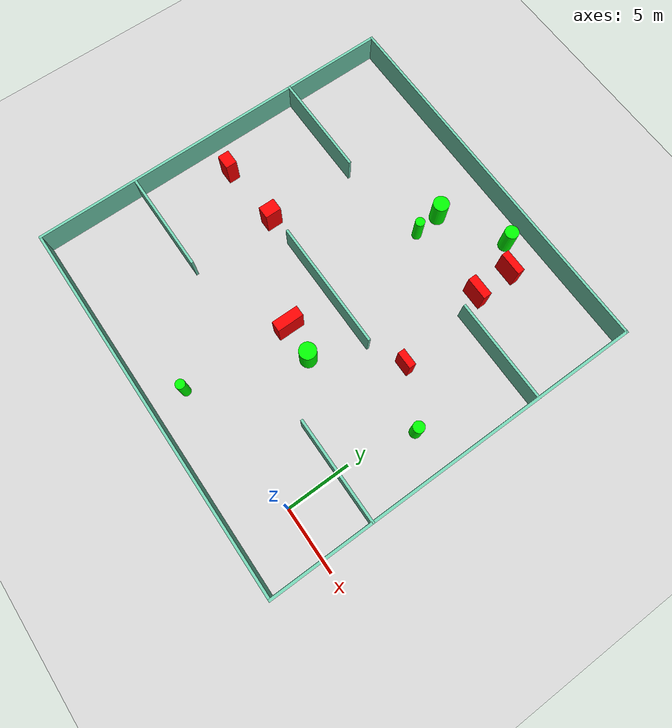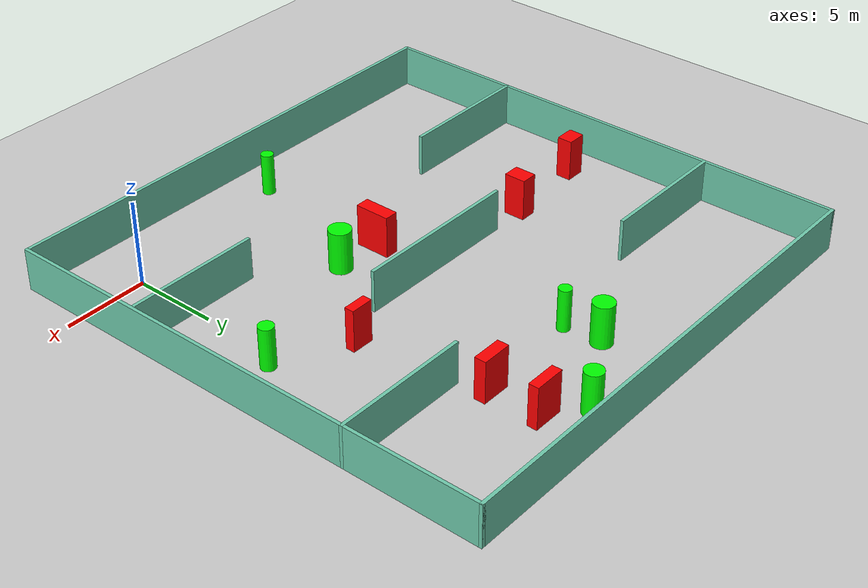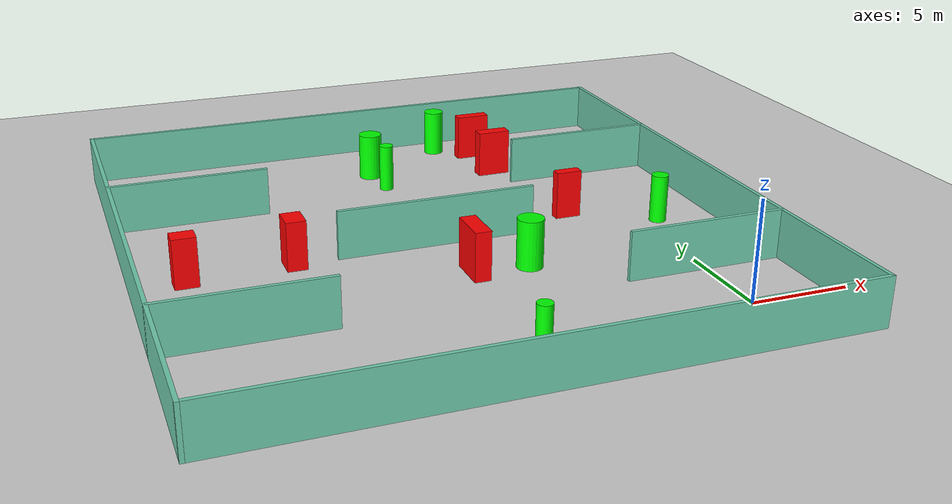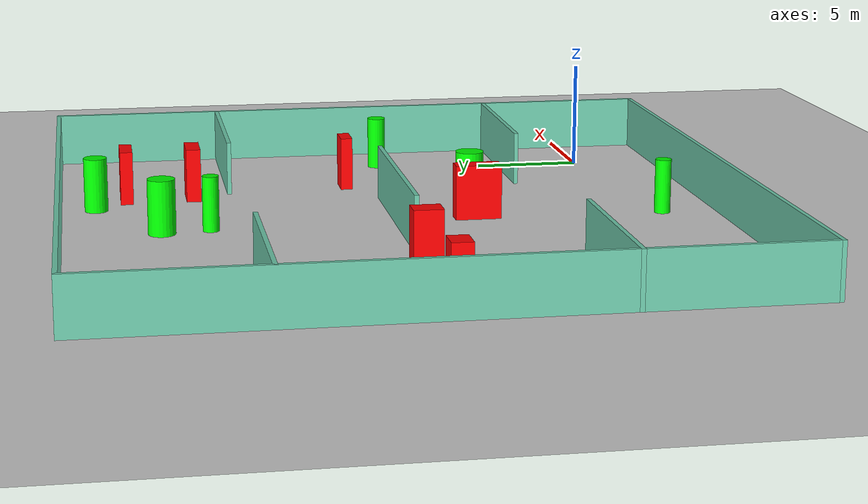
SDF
<sdf version="1.7">
 <world name="default">
  <light name="sun" type="directional">
   <pose>0 0 10 0 -0 0</pose>
   <diffuse>0.8 0.8 0.8 1</diffuse>
   <specular>0.2 0.2 0.2 1</specular>
   <attenuation>
    <range>1000</range>
    <constant>0.9</constant>
    <linear>0.01</linear>
    <quadratic>0.001</quadratic>
   </attenuation>
   <direction>-0.5 0.1 -0.9</direction>
   <spot><inner_angle>0</inner_angle><outer_angle>0</outer_angle><falloff>0</falloff></spot>
  </light>
  <model name="ground_plane">
   <static>1</static>
   <link name="link">
    <collision name="collision">
     <geometry><plane><normal>0 0 1</normal><size>100 100</size></plane></geometry>
     <surface>
      <contact><collide_bitmask>65535</collide_bitmask></contact>
      <friction><ode><mu>100</mu><mu2>50</mu2></ode></friction>
     </surface>
    </collision>
    <visual name="visual">
     <cast_shadows>0</cast_shadows>
     <geometry><plane><normal>0 0 1</normal><size>100 100</size></plane></geometry>
     <material>
      <script><uri>file://media/materials/scripts/gazebo.material</uri><name>Gazebo/Grey</name></script>
     </material>
    </visual>
   </link>
  </model>
  <gravity>0 0 -9.8</gravity>
  <magnetic_field>6e-06 2.3e-05 -4.2e-05</magnetic_field>
  <atmosphere type="adiabatic"/>
  <physics type="ode">
   <max_step_size>0.001</max_step_size>
   <real_time_factor>1</real_time_factor>
   <real_time_update_rate>1000</real_time_update_rate>
  </physics>
  <scene><ambient>0.4 0.4 0.4 1</ambient><background>0.7 0.7 0.7 1</background><shadows>1</shadows></scene>
  <spherical_coordinates>
   <surface_model>EARTH_WGS84</surface_model>
   <latitude_deg>0</latitude_deg>
   <longitude_deg>0</longitude_deg>
   <elevation>0</elevation>
   <heading_deg>0</heading_deg>
  </spherical_coordinates>
  <model name="my_base_walls">
   <link name="Wall_10">
    <collision name="Wall_10_Collision">
     <geometry><box><size>8.2 0.2 2.5</size></box></geometry>
     <pose>0 0 1.25 0 -0 0</pose>
    </collision>
    <visual name="Wall_10_Visual">
     <pose>0 0 1.25 0 -0 0</pose>
     <geometry><box><size>8.2 0.2 2.5</size></box></geometry>
     <material>
      <script><uri>file://media/materials/scripts/gazebo.material</uri><name>Gazebo/Grey</name></script>
      <ambient>0.435294 0.796078 0.67451 1</ambient>
     </material>
     <meta><layer>0</layer></meta>
    </visual>
    <pose>-11 -7 0 0 -0 0</pose>
   </link>
   <link name="Wall_12">
    <collision name="Wall_12_Collision">
     <geometry><box><size>8.2 0.2 2.5</size></box></geometry>
     <pose>0 0 1.25 0 -0 0</pose>
    </collision>
    <visual name="Wall_12_Visual">
     <pose>0 0 1.25 0 -0 0</pose>
     <geometry><box><size>8.2 0.2 2.5</size></box></geometry>
     <material>
      <script><uri>file://media/materials/scripts/gazebo.material</uri><name>Gazebo/Grey</name></script>
      <ambient>0.435294 0.796078 0.67451 1</ambient>
     </material>
     <meta><layer>0</layer></meta>
    </visual>
    <pose>-11 7 0 0 -0 0</pose>
   </link>
   <link name="Wall_14">
    <collision name="Wall_14_Collision">
     <geometry><box><size>8.2 0.2 2.5</size></box></geometry>
     <pose>0 0 1.25 0 -0 0</pose>
    </collision>
    <visual name="Wall_14_Visual">
     <pose>0 0 1.25 0 -0 0</pose>
     <geometry><box><size>8.2 0.2 2.5</size></box></geometry>
     <material>
      <script><uri>file://media/materials/scripts/gazebo.material</uri><name>Gazebo/Grey</name></script>
      <ambient>0.435294 0.796078 0.67451 1</ambient>
     </material>
     <meta><layer>0</layer></meta>
    </visual>
    <pose>11 7 0 0 -0 3.14159</pose>
   </link>
   <link name="Wall_16">
    <collision name="Wall_16_Collision">
     <geometry><box><size>10.2 0.2 2.5</size></box></geometry>
     <pose>0 0 1.25 0 -0 0</pose>
    </collision>
    <visual name="Wall_16_Visual">
     <pose>0 0 1.25 0 -0 0</pose>
     <geometry><box><size>10.2 0.2 2.5</size></box></geometry>
     <material>
      <script><uri>file://media/materials/scripts/gazebo.material</uri><name>Gazebo/Grey</name></script>
      <ambient>0.435294 0.796078 0.67451 1</ambient>
     </material>
     <meta><layer>0</layer></meta>
    </visual>
    <pose>0 0 0 0 -0 3.14159</pose>
   </link>
   <link name="Wall_2">
    <collision name="Wall_2_Collision">
     <geometry><box><size>30.2 0.2 2.5</size></box></geometry>
     <pose>0 0 1.25 0 -0 0</pose>
    </collision>
    <visual name="Wall_2_Visual">
     <pose>0 0 1.25 0 -0 0</pose>
     <geometry><box><size>30.2 0.2 2.5</size></box></geometry>
     <material>
      <script><uri>file://media/materials/scripts/gazebo.material</uri><name>Gazebo/Grey</name></script>
      <ambient>0.435294 0.796078 0.67451 1</ambient>
     </material>
     <meta><layer>0</layer></meta>
    </visual>
    <pose>0 -15 0 0 -0 3.14159</pose>
   </link>
   <link name="Wall_3">
    <collision name="Wall_3_Collision">
     <geometry><box><size>30.2 0.2 2.5</size></box></geometry>
     <pose>0 0 1.25 0 -0 0</pose>
    </collision>
    <visual name="Wall_3_Visual">
     <pose>0 0 1.25 0 -0 0</pose>
     <geometry><box><size>30.2 0.2 2.5</size></box></geometry>
     <material>
      <script><uri>file://media/materials/scripts/gazebo.material</uri><name>Gazebo/Grey</name></script>
      <ambient>0.435294 0.796078 0.67451 1</ambient>
     </material>
     <meta><layer>0</layer></meta>
    </visual>
    <pose>-15 0 0 0 -0 1.5708</pose>
   </link>
   <link name="Wall_4">
    <collision name="Wall_4_Collision">
     <geometry><box><size>30.2 0.2 2.5</size></box></geometry>
     <pose>0 0 1.25 0 -0 0</pose>
    </collision>
    <visual name="Wall_4_Visual">
     <pose>0 0 1.25 0 -0 0</pose>
     <geometry><box><size>30.2 0.2 2.5</size></box></geometry>
     <material>
      <script><uri>file://media/materials/scripts/gazebo.material</uri><name>Gazebo/Grey</name></script>
      <ambient>0.435294 0.796078 0.67451 1</ambient>
     </material>
     <meta><layer>0</layer></meta>
    </visual>
    <pose>0 15 0 0 -0 0</pose>
   </link>
   <link name="Wall_6">
    <collision name="Wall_6_Collision">
     <geometry><box><size>30.2 0.2 2.5</size></box></geometry>
     <pose>0 0 1.25 0 -0 0</pose>
    </collision>
    <visual name="Wall_6_Visual">
     <pose>0 0 1.25 0 -0 0</pose>
     <geometry><box><size>30.2 0.2 2.5</size></box></geometry>
     <material>
      <script><uri>file://media/materials/scripts/gazebo.material</uri><name>Gazebo/Grey</name></script>
      <ambient>0.435294 0.796078 0.67451 1</ambient>
     </material>
     <meta><layer>0</layer></meta>
    </visual>
    <pose>15 0 0 0 -0 1.5708</pose>
   </link>
   <link name="Wall_8">
    <collision name="Wall_8_Collision">
     <geometry><box><size>8.2 0.2 2.5</size></box></geometry>
     <pose>0 0 1.25 0 -0 0</pose>
    </collision>
    <visual name="Wall_8_Visual">
     <pose>0 0 1.25 0 -0 0</pose>
     <geometry><box><size>8.2 0.2 2.5</size></box></geometry>
     <material>
      <script><uri>file://media/materials/scripts/gazebo.material</uri><name>Gazebo/Grey</name></script>
      <ambient>0.435294 0.796078 0.67451 1</ambient>
     </material>
     <meta><layer>0</layer></meta>
    </visual>
    <pose>11 -7 0 0 -0 3.14159</pose>
   </link>
   <static>1</static>
   <pose>-11 11 0 0 -0 0</pose>
  </model>
  <model name="cylinder1">
   <static>1</static>
   <link name="link">
    <inertial>
     <mass>1</mass>
     <inertia><ixx>0.5</ixx><ixy>0</ixy><ixz>0</ixz><iyy>0.5</iyy><iyz>0</iyz><izz>1</izz></inertia>
    </inertial>
    <collision name="collision">
     <geometry><cylinder><radius>0.5350341900186965</radius><length>2.5</length></cylinder></geometry>
    </collision>
    <visual name="visual">
     <geometry><cylinder><radius>0.5350341900186965</radius><length>2.5</length></cylinder></geometry>
     <material>
      <ambient>0 1 0 1</ambient>
      <diffuse>0 1 0 1</diffuse>
      <specular>0.1 0.1 0.1 1</specular>
      <emissive>0 0 0 0</emissive>
     </material>
    </visual>
   </link>
   <pose>-6.446886730323445 24.321809082662362 1.25 0 0 0</pose>
  </model>
  <model name="cylinder2">
   <static>1</static>
   <link name="link">
    <inertial>
     <mass>1</mass>
     <inertia><ixx>0.5</ixx><ixy>0</ixy><ixz>0</ixz><iyy>0.5</iyy><iyz>0</iyz><izz>1</izz></inertia>
    </inertial>
    <collision name="collision">
     <geometry><cylinder><radius>0.43504342144699404</radius><length>2.5</length></cylinder></geometry>
    </collision>
    <visual name="visual">
     <geometry><cylinder><radius>0.43504342144699404</radius><length>2.5</length></cylinder></geometry>
     <material>
      <ambient>0 1 0 1</ambient>
      <diffuse>0 1 0 1</diffuse>
      <specular>0.1 0.1 0.1 1</specular>
      <emissive>0 0 0 0</emissive>
     </material>
    </visual>
   </link>
   <pose>0.8555333726170709 10.142121220062743 1.25 0 0 0</pose>
  </model>
  <model name="cylinder3">
   <static>1</static>
   <link name="link">
    <inertial>
     <mass>1</mass>
     <inertia><ixx>0.5</ixx><ixy>0</ixy><ixz>0</ixz><iyy>0.5</iyy><iyz>0</iyz><izz>1</izz></inertia>
    </inertial>
    <collision name="collision">
     <geometry><cylinder><radius>0.36965953007644037</radius><length>2.5</length></cylinder></geometry>
    </collision>
    <visual name="visual">
     <geometry><cylinder><radius>0.36965953007644037</radius><length>2.5</length></cylinder></geometry>
     <material>
      <ambient>0 1 0 1</ambient>
      <diffuse>0 1 0 1</diffuse>
      <specular>0.1 0.1 0.1 1</specular>
      <emissive>0 0 0 0</emissive>
     </material>
    </visual>
   </link>
   <pose>-10.974084374139707 19.352936448412994 1.25 0 0 0</pose>
  </model>
  <model name="cylinder4">
   <static>1</static>
   <link name="link">
    <inertial>
     <mass>1</mass>
     <inertia><ixx>0.5</ixx><ixy>0</ixy><ixz>0</ixz><iyy>0.5</iyy><iyz>0</iyz><izz>1</izz></inertia>
    </inertial>
    <collision name="collision">
     <geometry><cylinder><radius>0.36647612721527556</radius><length>2.5</length></cylinder></geometry>
    </collision>
    <visual name="visual">
     <geometry><cylinder><radius>0.36647612721527556</radius><length>2.5</length></cylinder></geometry>
     <material>
      <ambient>0 1 0 1</ambient>
      <diffuse>0 1 0 1</diffuse>
      <specular>0.1 0.1 0.1 1</specular>
      <emissive>0 0 0 0</emissive>
     </material>
    </visual>
   </link>
   <pose>-10.865244104841803 -1.3811511961657366 1.25 0 0 0</pose>
  </model>
  <model name="cylinder5">
   <static>1</static>
   <link name="link">
    <inertial>
     <mass>1</mass>
     <inertia><ixx>0.5</ixx><ixy>0</ixy><ixz>0</ixz><iyy>0.5</iyy><iyz>0</iyz><izz>1</izz></inertia>
    </inertial>
    <collision name="collision">
     <geometry><cylinder><radius>0.6169517874175651</radius><length>2.5</length></cylinder></geometry>
    </collision>
    <visual name="visual">
     <geometry><cylinder><radius>0.6169517874175651</radius><length>2.5</length></cylinder></geometry>
     <material>
      <ambient>0 1 0 1</ambient>
      <diffuse>0 1 0 1</diffuse>
      <specular>0.1 0.1 0.1 1</specular>
      <emissive>0 0 0 0</emissive>
     </material>
    </visual>
   </link>
   <pose>-11.228169635779782 21.524507865872867 1.25 0 0 0</pose>
  </model>
  <model name="cylinder6">
   <static>1</static>
   <link name="link">
    <inertial>
     <mass>1</mass>
     <inertia><ixx>0.5</ixx><ixy>0</ixy><ixz>0</ixz><iyy>0.5</iyy><iyz>0</iyz><izz>1</izz></inertia>
    </inertial>
    <collision name="collision">
     <geometry><cylinder><radius>0.6548263161406438</radius><length>2.5</length></cylinder></geometry>
    </collision>
    <visual name="visual">
     <geometry><cylinder><radius>0.6548263161406438</radius><length>2.5</length></cylinder></geometry>
     <material>
      <ambient>0 1 0 1</ambient>
      <diffuse>0 1 0 1</diffuse>
      <specular>0.1 0.1 0.1 1</specular>
      <emissive>0 0 0 0</emissive>
     </material>
    </visual>
   </link>
   <pose>-7.754790617044595 7.055113412770478 1.25 0 0 0</pose>
  </model>
  <model name="box1">
   <static>1</static>
   <link name="link">
    <inertial>
     <mass>1</mass>
     <inertia><ixx>0.083</ixx><ixy>0</ixy><ixz>0</ixz><iyy>0.083</iyy><iyz>0</iyz><izz>0.083</izz></inertia>
    </inertial>
    <collision name="collision">
     <geometry><box><size>1.167615423061708 0.9140584716406069 2.5</size></box></geometry>
    </collision>
    <visual name="visual">
     <geometry><box><size>1.167615423061708 0.9140584716406069 2.5</size></box></geometry>
     <material>
      <ambient>1 0 0 1</ambient>
      <diffuse>1 0 0 1</diffuse>
      <specular>0.1 0.1 0.1 1</specular>
      <emissive>0 0 0 0</emissive>
     </material>
    </visual>
    <sensor name="my_contact" type="contact">
     <contact><collision>box_collision</collision><topic>__default_topic__</topic></contact>
    </sensor>
   </link>
   <pose>-23.481563234256335 10.581683350085132 1.25 0 0 0</pose>
  </model>
  <model name="box2">
   <static>1</static>
   <link name="link">
    <inertial>
     <mass>1</mass>
     <inertia><ixx>0.083</ixx><ixy>0</ixy><ixz>0</ixz><iyy>0.083</iyy><iyz>0</iyz><izz>0.083</izz></inertia>
    </inertial>
    <collision name="collision">
     <geometry><box><size>0.8202772440274704 2.0968595816573137 2.5</size></box></geometry>
    </collision>
    <visual name="visual">
     <geometry><box><size>0.8202772440274704 2.0968595816573137 2.5</size></box></geometry>
     <material>
      <ambient>1 0 0 1</ambient>
      <diffuse>1 0 0 1</diffuse>
      <specular>0.1 0.1 0.1 1</specular>
      <emissive>0 0 0 0</emissive>
     </material>
    </visual>
    <sensor name="my_contact" type="contact">
     <contact><collision>box_collision</collision><topic>__default_topic__</topic></contact>
    </sensor>
   </link>
   <pose>-10.479674958840242 7.2328003318525305 1.25 0 0 0</pose>
  </model>
  <model name="box3">
   <static>1</static>
   <link name="link">
    <inertial>
     <mass>1</mass>
     <inertia><ixx>0.083</ixx><ixy>0</ixy><ixz>0</ixz><iyy>0.083</iyy><iyz>0</iyz><izz>0.083</izz></inertia>
    </inertial>
    <collision name="collision">
     <geometry><box><size>1.7707151190745638 0.6752867736361097 2.5</size></box></geometry>
    </collision>
    <visual name="visual">
     <geometry><box><size>1.7707151190745638 0.6752867736361097 2.5</size></box></geometry>
     <material>
      <ambient>1 0 0 1</ambient>
      <diffuse>1 0 0 1</diffuse>
      <specular>0.1 0.1 0.1 1</specular>
      <emissive>0 0 0 0</emissive>
     </material>
    </visual>
    <sensor name="my_contact" type="contact">
     <contact><collision>box_collision</collision><topic>__default_topic__</topic></contact>
    </sensor>
   </link>
   <pose>-4.5325305928049495 19.766628887062932 1.25 0 0 0</pose>
  </model>
  <model name="box4">
   <static>1</static>
   <link name="link">
    <inertial>
     <mass>1</mass>
     <inertia><ixx>0.083</ixx><ixy>0</ixy><ixz>0</ixz><iyy>0.083</iyy><iyz>0</iyz><izz>0.083</izz></inertia>
    </inertial>
    <collision name="collision">
     <geometry><box><size>1.335438176836861 0.5521105976112125 2.5</size></box></geometry>
    </collision>
    <visual name="visual">
     <geometry><box><size>1.335438176836861 0.5521105976112125 2.5</size></box></geometry>
     <material>
      <ambient>1 0 0 1</ambient>
      <diffuse>1 0 0 1</diffuse>
      <specular>0.1 0.1 0.1 1</specular>
      <emissive>0 0 0 0</emissive>
     </material>
    </visual>
    <sensor name="my_contact" type="contact">
     <contact><collision>box_collision</collision><topic>__default_topic__</topic></contact>
    </sensor>
   </link>
   <pose>-3.3539836758484434 12.329596795582585 1.25 0 0 0</pose>
  </model>
  <model name="box5">
   <static>1</static>
   <link name="link">
    <inertial>
     <mass>1</mass>
     <inertia><ixx>0.083</ixx><ixy>0</ixy><ixz>0</ixz><iyy>0.083</iyy><iyz>0</iyz><izz>0.083</izz></inertia>
    </inertial>
    <collision name="collision">
     <geometry><box><size>0.9946666910929047 1.2918403860793028 2.5</size></box></geometry>
    </collision>
    <visual name="visual">
     <geometry><box><size>0.9946666910929047 1.2918403860793028 2.5</size></box></geometry>
     <material>
      <ambient>1 0 0 1</ambient>
      <diffuse>1 0 0 1</diffuse>
      <specular>0.1 0.1 0.1 1</specular>
      <emissive>0 0 0 0</emissive>
     </material>
    </visual>
    <sensor name="my_contact" type="contact">
     <contact><collision>box_collision</collision><topic>__default_topic__</topic></contact>
    </sensor>
   </link>
   <pose>-18.25107299127718 10.947948540832883 1.25 0 0 0</pose>
  </model>
  <model name="box6">
   <static>1</static>
   <link name="link">
    <inertial>
     <mass>1</mass>
     <inertia><ixx>0.083</ixx><ixy>0</ixy><ixz>0</ixz><iyy>0.083</iyy><iyz>0</iyz><izz>0.083</izz></inertia>
    </inertial>
    <collision name="collision">
     <geometry><box><size>1.8270206767609782 0.5848855076601853 2.5</size></box></geometry>
    </collision>
    <visual name="visual">
     <geometry><box><size>1.8270206767609782 0.5848855076601853 2.5</size></box></geometry>
     <material>
      <ambient>1 0 0 1</ambient>
      <diffuse>1 0 0 1</diffuse>
      <specular>0.1 0.1 0.1 1</specular>
      <emissive>0 0 0 0</emissive>
     </material>
    </visual>
    <sensor name="my_contact" type="contact">
     <contact><collision>box_collision</collision><topic>__default_topic__</topic></contact>
    </sensor>
   </link>
   <pose>-4.588933435182396 22.88378099208554 1.25 0 0 0</pose>
  </model>
 </world>
</sdf>
